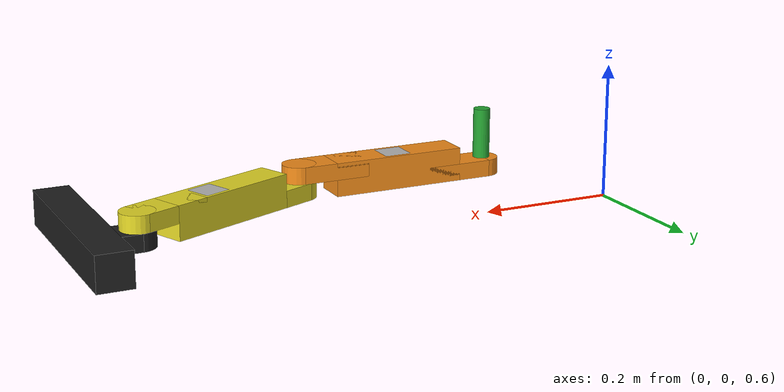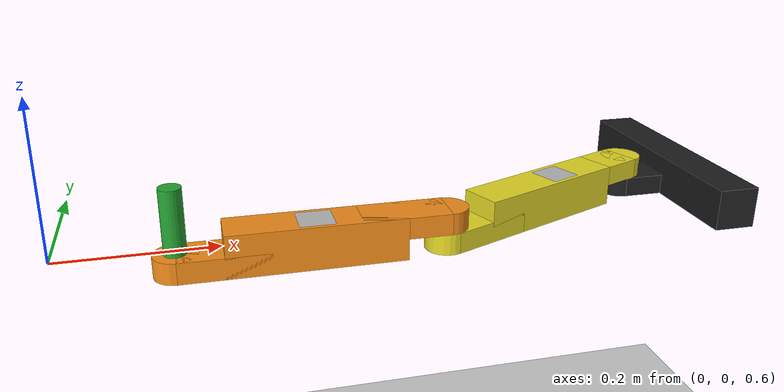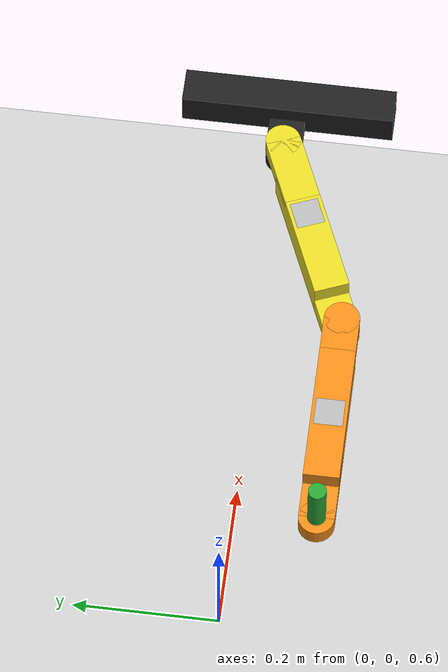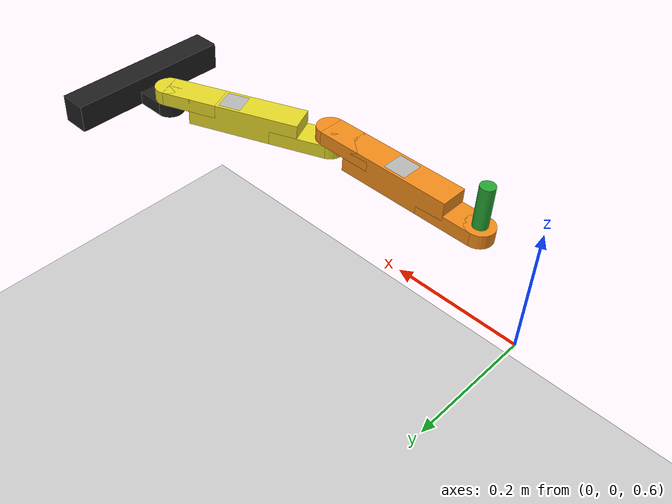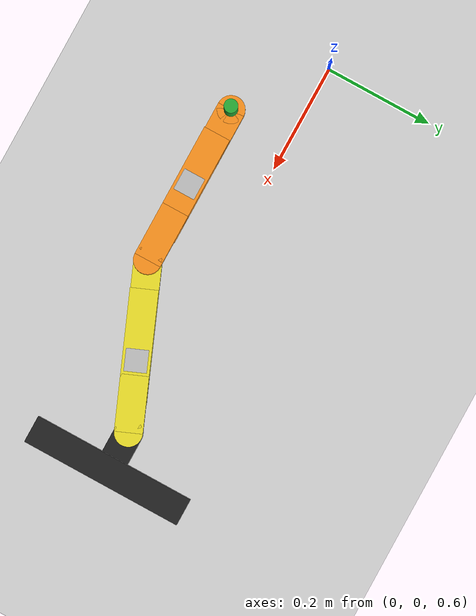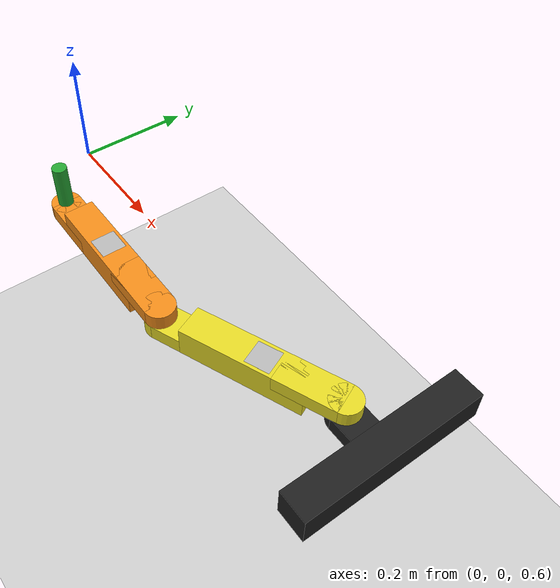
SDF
<?xml version="1.0"?>
<sdf version="1.6">
  <world name="default">

    <!-- Light -->
    <include>
      <uri>model://sun</uri>
    </include>

    <!-- Ground Plane -->
    <include>
      <uri>model://ground_plane</uri>
    </include>

    <!-- 2R Manipulator Scaled Down -->
    <include>
	<uri>model://2r_manipulator_scaled_down</uri>
	<pose frame="">0.8 0 0.1 0 0 1.57</pose>
    </include>

  </world>
</sdf>

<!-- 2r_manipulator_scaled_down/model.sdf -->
<sdf version='1.6'>
  <model name='2r_manipulator_scaled_down'>
    <static>false</static>
    <link name='base_link'>
      <pose frame=''>0 0 0.55 0 -0 0</pose>
      <inertial>
        <pose frame=''>0 0 0 0 -0 0</pose>
        <mass>1</mass>
        <inertia>
          <ixx>0.1</ixx>
          <ixy>0</ixy>
          <ixz>0</ixz>
          <iyy>0.1</iyy>
          <iyz>0</iyz>
          <izz>0.1</izz>
        </inertia>
      </inertial>
      <collision name='base_link_collision'>
        <pose frame=''>0 0 0 0 -0 0</pose>
        <geometry>
          <box>
            <size>0.3 0.05 0.05</size>
          </box>
        </geometry>
      </collision>
      <collision name='base_link_collision_1'>
        <pose frame=''>0 0.025 -0.0125 0 -0 0</pose>
        <geometry>
          <box>
            <size>0.05 0.1 0.025</size>
          </box>
        </geometry>
      </collision>
      <collision name='base_link_collision_2'>
        <pose frame=''>0 0.075 -0.0125 0 -0 0</pose>
        <geometry>
          <cylinder>
            <length>0.025</length>
            <radius>0.025</radius>
          </cylinder>
        </geometry>
      </collision>
      <visual name='base_link_visual'>
        <pose frame=''>0 0 0 0 -0 0</pose>
        <geometry>
          <box>
            <size>0.3 0.05 0.05</size>
          </box>
        </geometry>
        <material>
          <script>
            <name>Gazebo/FlatBlack</name>
            <uri>file://media/materials/scripts/gazebo.material</uri>
          </script>
        </material>
      </visual>
      <visual name='base_link_visual_1'>
        <pose frame=''>0 0.025 -0.0125 0 -0 0</pose>
        <geometry>
          <box>
            <size>0.05 0.1 0.025</size>
          </box>
        </geometry>
        <material>
          <script>
            <name>Gazebo/FlatBlack</name>
            <uri>file://media/materials/scripts/gazebo.material</uri>
          </script>
        </material>
      </visual>
      <visual name='base_link_visual_2'>
        <pose frame=''>0 0.075 -0.0125 0 -0 0</pose>
        <geometry>
          <cylinder>
            <length>0.025</length>
            <radius>0.025</radius>
          </cylinder>
        </geometry>
        <material>
          <script>
            <name>Gazebo/FlatBlack</name>
            <uri>file://media/materials/scripts/gazebo.material</uri>
          </script>
        </material>
      </visual>
    </link>
    <joint name='anchor' type='fixed'>
      <child>base_link</child>
      <parent>world</parent>
      <axis>
        <limit>
          <lower>0</lower>
          <upper>0</upper>
        </limit>
        <dynamics>
          <damping>0</damping>
          <friction>0</friction>
          <spring_reference>0</spring_reference>
          <spring_stiffness>0</spring_stiffness>
        </dynamics>
        <use_parent_model_frame>1</use_parent_model_frame>
        <xyz>0 0 1</xyz>
      </axis>
    </joint>
    <link name='first_link'>
      <pose frame=''>0 0.075 0.55 0 -0 0.3925</pose>
      <inertial>
        <pose frame=''>0 0.1375 0 0 -0 0</pose>
        <mass>1</mass>
        <inertia>
          <ixx>0.1</ixx>
          <ixy>0</ixy>
          <ixz>0</ixz>
          <iyy>0.1</iyy>
          <iyz>0</iyz>
          <izz>0.1</izz>
        </inertia>
      </inertial>
      <collision name='first_link_collision'>
        <pose frame=''>0 0 0.0125 0 -0 0</pose>
        <geometry>
          <cylinder>
            <length>0.025</length>
            <radius>0.025</radius>
          </cylinder>
        </geometry>
      </collision>
      <collision name='first_link_collision_1'>
        <pose frame=''>0 0.05 0.0125 0 -0 0</pose>
        <geometry>
          <box>
            <size>0.05 0.1 0.025</size>
          </box>
        </geometry>
      </collision>
      <collision name='first_link_collision_2'>
        <pose frame=''>0 0.15 0 0 -0 0</pose>
        <geometry>
          <box>
            <size>0.05 0.2 0.05</size>
          </box>
        </geometry>
      </collision>
      <collision name='first_link_collision_3'>
        <pose frame=''>0 0.25 -0.0125 0 -0 0</pose>
        <geometry>
          <box>
            <size>0.05 0.1 0.025</size>
          </box>
        </geometry>
      </collision>
      <collision name='first_link_collision_4'>
        <pose frame=''>0 0.3 -0.0125 0 -0 0</pose>
        <geometry>
          <cylinder>
            <length>0.025</length>
            <radius>0.025</radius>
          </cylinder>
        </geometry>
      </collision>
      <visual name='first_link_visual'>
        <pose frame=''>0 0 0.0125 0 -0 0</pose>
        <geometry>
          <cylinder>
            <length>0.025</length>
            <radius>0.025</radius>
          </cylinder>
        </geometry>
        <material>
          <script>
            <name>Gazebo/Yellow</name>
            <uri>file://media/materials/scripts/gazebo.material</uri>
          </script>
        </material>
      </visual>
      <visual name='first_link_visual_1'>
        <pose frame=''>0 0.05 0.0125 0 -0 0</pose>
        <geometry>
          <box>
            <size>0.05 0.1 0.025</size>
          </box>
        </geometry>
        <material>
          <script>
            <name>Gazebo/Yellow</name>
            <uri>file://media/materials/scripts/gazebo.material</uri>
          </script>
        </material>
      </visual>
      <visual name='first_link_visual_2'>
        <pose frame=''>0 0.15 0 0 -0 0</pose>
        <geometry>
          <box>
            <size>0.05 0.2 0.05</size>
          </box>
        </geometry>
        <material>
          <script>
            <name>Gazebo/Yellow</name>
            <uri>file://media/materials/scripts/gazebo.material</uri>
          </script>
        </material>
      </visual>

      <visual name='first_link_dummy'>
        <pose frame=''>0 0.125 0.025 0 -0 0</pose>
        <geometry>
          <box>
            <size>0.04 0.04 0.00001</size>
          </box>
        </geometry>
        <material>
          <script>
            <uri>model://2r_manipulator_scaled_down/materials/scripts/marker0.material</uri>
            <uri>model://2r_manipulator_scaled_down/materials/textures</uri>
            <name>myMarker0</name>
          </script>
        </material>
      </visual>

      <visual name='first_link_visual_3'>
        <pose frame=''>0 0.25 -0.0125 0 -0 0</pose>
        <geometry>
          <box>
            <size>0.05 0.1 0.025</size>
          </box>
        </geometry>
        <material>
          <script>
            <name>Gazebo/Yellow</name>
            <uri>file://media/materials/scripts/gazebo.material</uri>
          </script>
        </material>
      </visual>
      <visual name='first_link_visual_4'>
        <pose frame=''>0 0.3 -0.0125 0 -0 0</pose>
        <geometry>
          <cylinder>
            <length>0.025</length>
            <radius>0.025</radius>
          </cylinder>
        </geometry>
        <material>
          <script>
            <name>Gazebo/Yellow</name>
            <uri>file://media/materials/scripts/gazebo.material</uri>
          </script>
        </material>
      </visual>
    </link>
    <joint name='first_joint' type='revolute'>
      <child>first_link</child>
      <parent>base_link</parent>
      <axis>
        <xyz>0 0 1</xyz>
        <limit>
          <lower>-0.785</lower>
          <upper>0</upper>
          <effort>30</effort>
          <velocity>1</velocity>
        </limit>
        <dynamics>
          <spring_reference>0</spring_reference>
          <spring_stiffness>0</spring_stiffness>
        </dynamics>
        <use_parent_model_frame>1</use_parent_model_frame>
      </axis>
    </joint>
    <link name='second_link'>
      <pose frame=''>-0.11475 0.352187 0.55 0 -0 0</pose>
      <inertial>
        <pose frame=''>0 0.1375 0 0 -0 0</pose>
        <mass>1</mass>
        <inertia>
          <ixx>0.1</ixx>
          <ixy>0</ixy>
          <ixz>0</ixz>
          <iyy>0.1</iyy>
          <iyz>0</iyz>
          <izz>0.1</izz>
        </inertia>
      </inertial>
      <collision name='second_link_collision'>
        <pose frame=''>0 0 0.0125 0 -0 0</pose>
        <geometry>
          <cylinder>
            <length>0.025</length>
            <radius>0.025</radius>
          </cylinder>
        </geometry>
      </collision>
      <collision name='second_link_collision_1'>
        <pose frame=''>0 0.05 0.0125 0 -0 0</pose>
        <geometry>
          <box>
            <size>0.05 0.1 0.025</size>
          </box>
        </geometry>
      </collision>
      <collision name='second_link_collision_2'>
        <pose frame=''>0 0.15 0 0 -0 0</pose>
        <geometry>
          <box>
            <size>0.05 0.2 0.05</size>
          </box>
        </geometry>
      </collision>
      <collision name='second_link_collision_3'>
        <pose frame=''>0 0.25 -0.0125 0 -0 0</pose>
        <geometry>
          <box>
            <size>0.05 0.1 0.025</size>
          </box>
        </geometry>
      </collision>
      <collision name='second_link_collision_4'>
        <pose frame=''>0 0.3 -0.0125 0 -0 0</pose>
        <geometry>
          <cylinder>
            <length>0.025</length>
            <radius>0.025</radius>
          </cylinder>
        </geometry>
      </collision>
      <visual name='second_link_visual'>
        <pose frame=''>0 0 0.0125 0 -0 0</pose>
        <geometry>
          <cylinder>
            <length>0.025</length>
            <radius>0.025</radius>
          </cylinder>
        </geometry>
        <material>
          <script>
            <name>Gazebo/Orange</name>
            <uri>file://media/materials/scripts/gazebo.material</uri>
          </script>
        </material>
      </visual>
      <visual name='second_link_visual_1'>
        <pose frame=''>0 0.05 0.0125 0 -0 0</pose>
        <geometry>
          <box>
            <size>0.05 0.1 0.025</size>
          </box>
        </geometry>
        <material>
          <script>
            <name>Gazebo/Orange</name>
            <uri>file://media/materials/scripts/gazebo.material</uri>
          </script>
        </material>
      </visual>
      <visual name='second_link_visual_2'>
        <pose frame=''>0 0.15 0 0 -0 0</pose>
        <geometry>
          <box>
            <size>0.05 0.2 0.05</size>
          </box>
        </geometry>
        <material>
          <script>
            <name>Gazebo/Orange</name>
            <uri>file://media/materials/scripts/gazebo.material</uri>
          </script>
        </material>
      </visual>

      <visual name='second_link_dummy'>
        <pose frame=''>0 0.15 0.025 0 -0 0</pose>
        <geometry>
          <box>
            <size>0.04 0.04 0.00001</size>
          </box>
        </geometry>
        <material>
          <script>
            <uri>model://2r_manipulator_scaled_down/materials/scripts/marker5.material</uri>
            <uri>model://2r_manipulator_scaled_down/materials/textures</uri>
            <name>myMarker5</name>
          </script>
        </material>
      </visual>

      <visual name='second_link_visual_3'>
        <pose frame=''>0 0.25 -0.0125 0 -0 0</pose>
        <geometry>
          <box>
            <size>0.05 0.1 0.025</size>
          </box>
        </geometry>
        <material>
          <script>
            <name>Gazebo/Orange</name>
            <uri>file://media/materials/scripts/gazebo.material</uri>
          </script>
        </material>
      </visual>
      <visual name='second_link_visual_4'>
        <pose frame=''>0 0.3 -0.0125 0 -0 0</pose>
        <geometry>
          <cylinder>
            <length>0.025</length>
            <radius>0.025</radius>
          </cylinder>
        </geometry>
        <material>
          <script>
            <name>Gazebo/Orange</name>
            <uri>file://media/materials/scripts/gazebo.material</uri>
          </script>
        </material>
      </visual>
    </link>
    <joint name='second_joint' type='revolute'>
      <child>second_link</child>
      <parent>first_link</parent>
      <axis>
        <xyz>0 0 1</xyz>
        <limit>
          <lower>-0.3925</lower>
          <upper>0.3925</upper>
          <effort>30</effort>
          <velocity>1</velocity>
        </limit>
        <dynamics>
          <spring_reference>0</spring_reference>
          <spring_stiffness>0</spring_stiffness>
        </dynamics>
        <use_parent_model_frame>1</use_parent_model_frame>
      </axis>
    </joint>
    <link name='handle_link'>
      <pose frame=''>-0.11475 0.652187 0.55 0 -0 0</pose>
      <inertial>
        <pose frame=''>0 0 0.0125 0 -0 0</pose>
        <mass>1</mass>
        <inertia>
          <ixx>0.1</ixx>
          <ixy>0</ixy>
          <ixz>0</ixz>
          <iyy>0.1</iyy>
          <iyz>0</iyz>
          <izz>0.1</izz>
        </inertia>
      </inertial>
      <collision name='handle_link_collision'>
        <pose frame=''>0 0 0.025 0 -0 0</pose>
        <geometry>
          <cylinder>
            <length>0.1</length>
            <radius>0.0125</radius>
          </cylinder>
        </geometry>
      </collision>
      <visual name='handle_link_visual'>
        <pose frame=''>0 0 0.025 0 -0 0</pose>
        <geometry>
          <cylinder>
            <length>0.1</length>
            <radius>0.0125</radius>
          </cylinder>
        </geometry>
        <material>
          <script>
            <name>Gazebo/Green</name>
            <uri>file://media/materials/scripts/gazebo.material</uri>
          </script>
        </material>
      </visual>
    </link>
    <joint name='handle_joint' type='revolute'>
      <child>handle_link</child>
      <parent>second_link</parent>
      <axis>
        <xyz>0 0 1</xyz>
        <limit>
          <lower>-3.14</lower>
          <upper>3.14</upper>
          <effort>30</effort>
          <velocity>1</velocity>
        </limit>
        <dynamics>
          <spring_reference>0</spring_reference>
          <spring_stiffness>0</spring_stiffness>
        </dynamics>
        <use_parent_model_frame>1</use_parent_model_frame>
      </axis>

    </joint>

    <!--Gazebo Yarp Plugin-->

  </model>
</sdf>
